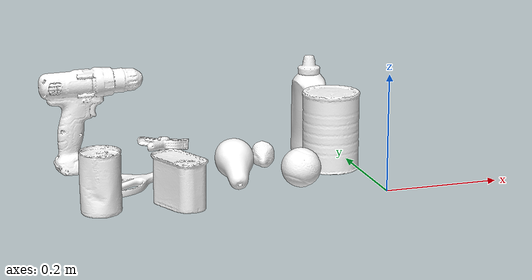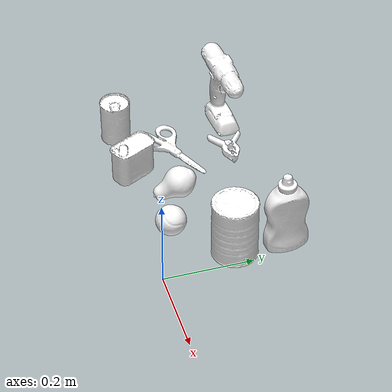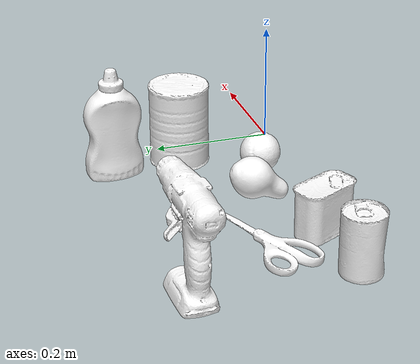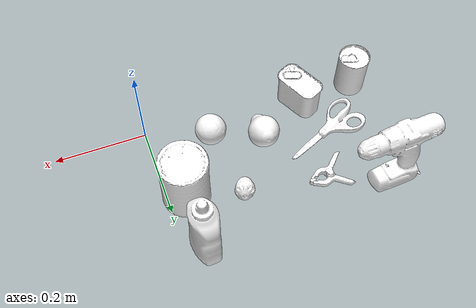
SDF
<sdf version="1.6">
 <world name="default">
  <gravity>0 0 -9.8</gravity>
  <model name="YcbPear">
   <pose>-0.2361526 0.11794 0.0 0.5355226 0 0</pose>
   <link name="baselink">
    <contact>
     <lateral_friction>0.6</lateral_friction>
     <rolling_friction>0.001</rolling_friction>
     <spinning_friction>0.001</spinning_friction>
     <contact_cfm>0.0</contact_cfm>
     <contact_erp>1.0</contact_erp>
    </contact>
    <inertial>
     <pose>0 0.005 0.04 0.0 0.0 0.0</pose>
     <mass>0.049</mass>
     <inertia><ixx>1e-3</ixx><ixy>0</ixy><ixz>0</ixz><iyy>1e-3</iyy><iyz>0</iyz><izz>1e-3</izz></inertia>
    </inertial>
    <visual name="visual">
     <geometry>
      <mesh><scale>1 1 1</scale><uri>../ycb_objects/YcbPear/textured_reoriented.obj</uri></mesh>
     </geometry>
     <material>
      <ambient>1 1 1 1</ambient>
      <diffuse>1.00000 1.00000 1.000000 1</diffuse>
      <specular>.5 .5 .5 1</specular>
      <emissive>0 0 0 0</emissive>
     </material>
    </visual>
    <collision name="collision">
     <geometry><mesh><scale>1 1 1</scale><uri>../ycb_objects/YcbPear/collision_vhacd.obj</uri></mesh></geometry>
    </collision>
   </link>
  </model>
  <model name="YcbMediumClamp">
   <pose>-0.33023 0.23849 0. 0 0 0</pose>
   <link name="baselink">
    <contact>
     <lateral_friction>0.6</lateral_friction>
     <rolling_friction>0.001</rolling_friction>
     <spinning_friction>0.001</spinning_friction>
     <contact_cfm>0.0</contact_cfm>
     <contact_erp>1.0</contact_erp>
    </contact>
    <inertial>
     <pose>0.02 0.009 0.04 -0.1 0 0.0</pose>
     <mass>0.059</mass>
     <inertia><ixx>1e-3</ixx><ixy>0</ixy><ixz>0</ixz><iyy>1e-3</iyy><iyz>0</iyz><izz>1e-3</izz></inertia>
    </inertial>
    <visual name="visual">
     <geometry>
      <mesh><scale>1 1 1</scale><uri>../ycb_objects/YcbMediumClamp/textured_reoriented.obj</uri></mesh>
     </geometry>
     <material>
      <ambient>1 1 1 1</ambient>
      <diffuse>1.00000 1.00000 1.000000 1</diffuse>
      <specular>.5 .5 .5 1</specular>
      <emissive>0 0 0 0</emissive>
     </material>
    </visual>
    <collision name="collision">
     <geometry>
      <mesh><scale>1 1 1</scale><uri>../ycb_objects/YcbMediumClamp/collision_vhacd.obj</uri></mesh>
     </geometry>
    </collision>
   </link>
  </model>
  <model name="YcbTennisBall">
   <pose>-0.1361526 0.05094 0. 0 0 -0.5236056</pose>
   <link name="baselink">
    <contact>
     <lateral_friction>0.8</lateral_friction>
     <rolling_friction>0.001</rolling_friction>
     <spinning_friction>0.001</spinning_friction>
     <contact_cfm>0.0</contact_cfm>
     <contact_erp>1.0</contact_erp>
    </contact>
    <inertial>
     <pose>0.0 0.005 0.03 0.0 0.0 0.0</pose>
     <mass>0.058</mass>
     <inertia><ixx>1e-3</ixx><ixy>0</ixy><ixz>0</ixz><iyy>1e-3</iyy><iyz>0</iyz><izz>1e-3</izz></inertia>
    </inertial>
    <visual name="visual">
     <geometry>
      <mesh><scale>1 1 1</scale><uri>../ycb_objects/YcbTennisBall/textured_reoriented.obj</uri></mesh>
     </geometry>
     <material>
      <ambient>1 1 1 1</ambient>
      <diffuse>1.00000 1.00000 1.000000 1</diffuse>
      <specular>.5 .5 .5 1</specular>
      <emissive>0 0 0 0</emissive>
     </material>
    </visual>
    <collision name="collision">
     <geometry>
      <mesh><scale>1 1 1</scale><uri>../ycb_objects/YcbTennisBall/collision_vhacd.obj</uri></mesh>
     </geometry>
    </collision>
   </link>
  </model>
  <model name="YcbStrawberry">
   <pose>-0.1561526 0.20094 0. 0 0 -0.5236056</pose>
   <link name="baselink">
    <contact>
     <lateral_friction>0.5</lateral_friction>
     <rolling_friction>0.001</rolling_friction>
     <spinning_friction>0.001</spinning_friction>
     <contact_cfm>0.0</contact_cfm>
     <contact_erp>1.0</contact_erp>
    </contact>
    <inertial>
     <pose>-0.005 0.005 0.02 0.0 0.0 0.0</pose>
     <mass>0.018</mass>
     <inertia><ixx>1e-3</ixx><ixy>0</ixy><ixz>0</ixz><iyy>1e-3</iyy><iyz>0</iyz><izz>1e-3</izz></inertia>
    </inertial>
    <visual name="visual">
     <geometry>
      <mesh><scale>1 1 1</scale><uri>../ycb_objects/YcbStrawberry/textured_reoriented.obj</uri></mesh>
     </geometry>
     <material>
      <ambient>1 1 1 1</ambient>
      <diffuse>1.00000 1.00000 1.000000 1</diffuse>
      <specular>.5 .5 .5 1</specular>
      <emissive>0 0 0 0</emissive>
     </material>
    </visual>
    <collision name="collision">
     <geometry>
      <mesh><scale>1 1 1</scale><uri>../ycb_objects/YcbStrawberry/collision_vhacd.obj</uri></mesh>
     </geometry>
    </collision>
   </link>
  </model>
  <model name="YcbMasterChefCan">
   <pose>-0.0547969 0.161169 0.07 0 0 -1.4993633</pose>
   <link name="baselink">
    <contact>
     <lateral_friction>0.5</lateral_friction>
     <rolling_friction>0.001</rolling_friction>
     <spinning_friction>0.001</spinning_friction>
     <contact_cfm>0.0</contact_cfm>
     <contact_erp>1.0</contact_erp>
    </contact>
    <inertial>
     <pose>-0.005 0.013 0.0 0.0 0.0 0.0</pose>
     <mass>0.404</mass>
     <inertia><ixx>1e-3</ixx><ixy>0</ixy><ixz>0</ixz><iyy>1e-3</iyy><iyz>0</iyz><izz>1e-3</izz></inertia>
    </inertial>
    <visual name="visual">
     <geometry>
      <mesh><scale>1 1 1</scale><uri>../ycb_objects/YcbMasterChefCan/textured_simple_reoriented.obj</uri></mesh>
     </geometry>
     <material>
      <ambient>1 1 1 1</ambient>
      <diffuse>1.00000 1.00000 1.000000 1</diffuse>
      <specular>.5 .5 .5 1</specular>
      <emissive>0 0 0 0</emissive>
     </material>
    </visual>
    <collision name="collision">
     <geometry>
      <mesh><scale>1 1 1</scale><uri>../ycb_objects/YcbMasterChefCan/collision_vhacd.obj</uri></mesh>
     </geometry>
    </collision>
   </link>
  </model>
  <model name="YcbScissors">
   <pose>-0.37456 0.13899 -0.08 0 0 0.5236056</pose>
   <link name="baselink">
    <contact>
     <lateral_friction>0.6</lateral_friction>
     <rolling_friction>0.001</rolling_friction>
     <spinning_friction>0.001</spinning_friction>
     <contact_cfm>0.0</contact_cfm>
     <contact_erp>1.0</contact_erp>
    </contact>
    <inertial>
     <pose>0.0 -0.005 0.1 0.0 0.0 0.0</pose>
     <mass>0.082</mass>
     <inertia><ixx>1e-3</ixx><ixy>0</ixy><ixz>0</ixz><iyy>1e-3</iyy><iyz>0</iyz><izz>1e-3</izz></inertia>
    </inertial>
    <visual name="visual">
     <geometry>
      <mesh><scale>1 1 1</scale><uri>../ycb_objects/YcbScissors/textured_simple_reoriented.obj</uri></mesh>
     </geometry>
     <material>
      <ambient>1 1 1 1</ambient>
      <diffuse>1.00000 1.00000 1.000000 1</diffuse>
      <specular>.5 .5 .5 1</specular>
      <emissive>0 0 0 0</emissive>
     </material>
    </visual>
    <collision name="collision">
     <geometry>
      <mesh><scale>1 1 1</scale><uri>../ycb_objects/YcbScissors/collision_vhacd.obj</uri></mesh>
     </geometry>
    </collision>
   </link>
  </model>
  <model name="YcbPowerDrill">
   <pose>-0.47456 0.25899 0. 0 0 -0.5236056</pose>
   <link name="baselink">
    <contact>
     <lateral_friction>0.9</lateral_friction>
     <rolling_friction>0.001</rolling_friction>
     <spinning_friction>0.001</spinning_friction>
     <contact_cfm>0.0</contact_cfm>
     <contact_erp>1.0</contact_erp>
    </contact>
    <inertial>
     <pose>-0.005 0.01 0.06 0 0 0.6</pose>
     <mass>0.895</mass>
     <inertia><ixx>1e-3</ixx><ixy>0</ixy><ixz>0</ixz><iyy>1e-3</iyy><iyz>0</iyz><izz>1e-3</izz></inertia>
    </inertial>
    <visual name="visual">
     <geometry>
      <mesh><scale>1 1 1</scale><uri>../ycb_objects/YcbPowerDrill/textured_simple_reoriented.obj</uri></mesh>
     </geometry>
     <material>
      <ambient>1 1 1 1</ambient>
      <diffuse>1.00000 1.00000 1.000000 1</diffuse>
      <specular>.5 .5 .5 1</specular>
      <emissive>0 0 0 0</emissive>
     </material>
    </visual>
    <collision name="collision">
     <geometry>
      <mesh><scale>1 1 1</scale><uri>../ycb_objects/YcbPowerDrill/collision_vhacd.obj</uri></mesh>
     </geometry>
    </collision>
   </link>
  </model>
  <model name="YcbPottedMeatCan">
   <pose>-0.3561526 0.02094 0.047 0 0 -0.5236056</pose>
   <link name="baselink">
    <contact>
     <lateral_friction>0.6</lateral_friction>
     <rolling_friction>0.001</rolling_friction>
     <spinning_friction>0.001</spinning_friction>
     <contact_cfm>0.0</contact_cfm>
     <contact_erp>1.0</contact_erp>
    </contact>
    <inertial>
     <pose>0 0.012 -0.01 0 0 -0.5</pose>
     <mass>0.370</mass>
     <inertia><ixx>1e-3</ixx><ixy>0</ixy><ixz>0</ixz><iyy>1e-3</iyy><iyz>0</iyz><izz>1e-3</izz></inertia>
    </inertial>
    <visual name="visual">
     <geometry>
      <mesh><scale>1 1 1</scale><uri>../ycb_objects/YcbPottedMeatCan/textured_simple_reoriented.obj</uri></mesh>
     </geometry>
     <material>
      <ambient>1 1 1 1</ambient>
      <diffuse>1.00000 1.00000 1.000000 1</diffuse>
      <specular>.5 .5 .5 1</specular>
      <emissive>0 0 0 0</emissive>
     </material>
    </visual>
    <collision name="collision">
     <geometry>
      <mesh><scale>1 1 1</scale><uri>../ycb_objects/YcbPottedMeatCan/collision_vhacd.obj</uri></mesh>
     </geometry>
    </collision>
   </link>
  </model>
  <model name="YcbTomatoSoupCan">
   <pose>-0.4861526 0.02094 0.06 0 0 -0.5236056</pose>
   <link name="baselink">
    <contact>
     <lateral_friction>0.6</lateral_friction>
     <rolling_friction>0.001</rolling_friction>
     <spinning_friction>0.001</spinning_friction>
     <contact_cfm>0.0</contact_cfm>
     <contact_erp>1.0</contact_erp>
    </contact>
    <inertial>
     <pose>0 0.0 -0.02 0.0 0.0 0.0</pose>
     <mass>0.349</mass>
     <inertia><ixx>1e-3</ixx><ixy>0</ixy><ixz>0</ixz><iyy>1e-3</iyy><iyz>0</iyz><izz>1e-3</izz></inertia>
    </inertial>
    <visual name="visual">
     <geometry>
      <mesh><scale>1 1 1</scale><uri>../ycb_objects/YcbTomatoSoupCan/textured_simple_reoriented.obj</uri></mesh>
     </geometry>
     <material>
      <ambient>1 1 1 1</ambient>
      <diffuse>1.00000 1.00000 1.000000 1</diffuse>
      <specular>.5 .5 .5 1</specular>
      <emissive>0 0 0 0</emissive>
     </material>
    </visual>
    <collision name="collision">
     <geometry>
      <mesh><scale>1 1 1</scale><uri>../ycb_objects/YcbTomatoSoupCan/collision_vhacd.obj</uri></mesh>
     </geometry>
    </collision>
   </link>
  </model>
  <model name="YcbMustardBottle">
   <pose>-0.0361526 0.29094 0.07 0 0 -1.5707963</pose>
   <link name="baselink">
    <contact>
     <lateral_friction>0.8</lateral_friction>
     <rolling_friction>0.001</rolling_friction>
     <spinning_friction>0.001</spinning_friction>
     <contact_cfm>0.0</contact_cfm>
     <contact_erp>1.0</contact_erp>
    </contact>
    <inertial>
     <pose>0.005 -0.005 -0.015 0 0 0.1</pose>
     <mass>0.603</mass>
     <inertia><ixx>1e-3</ixx><ixy>0</ixy><ixz>0</ixz><iyy>1e-3</iyy><iyz>0</iyz><izz>1e-3</izz></inertia>
    </inertial>
    <visual name="visual">
     <geometry>
      <mesh><scale>1 1 1</scale><uri>../ycb_objects/YcbMustardBottle/textured_simple_reoriented.obj</uri></mesh>
     </geometry>
     <material>
      <ambient>1 1 1 1</ambient>
      <diffuse>1.00000 1.00000 1.000000 1</diffuse>
      <specular>.5 .5 .5 1</specular>
      <emissive>0 0 0 0</emissive>
     </material>
    </visual>
    <collision name="collision">
     <geometry>
      <mesh><scale>1 1 1</scale><uri>../ycb_objects/YcbMustardBottle/collision_vhacd.obj</uri></mesh>
     </geometry>
    </collision>
   </link>
  </model>
 </world>
</sdf>
